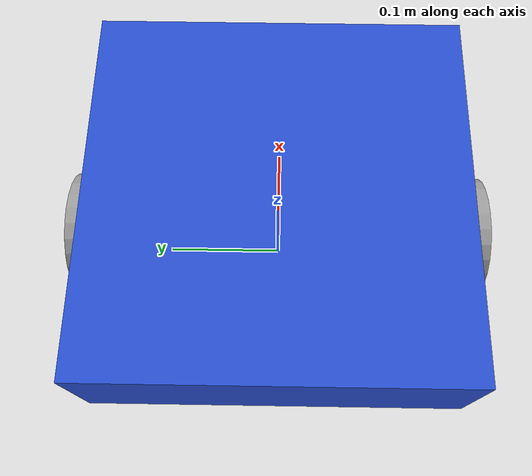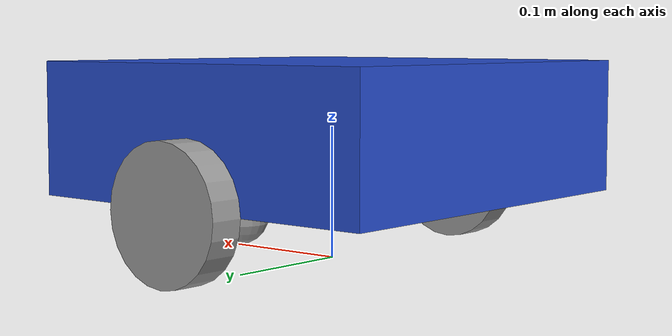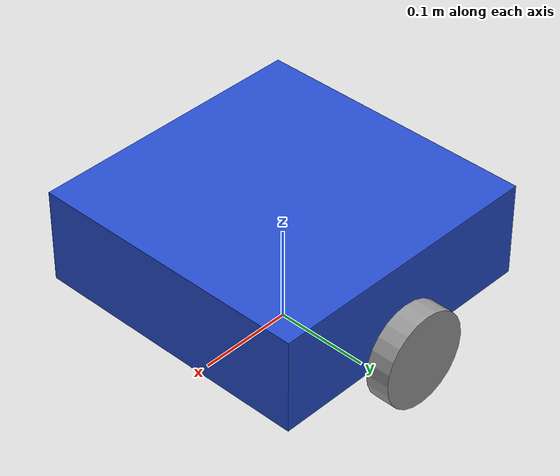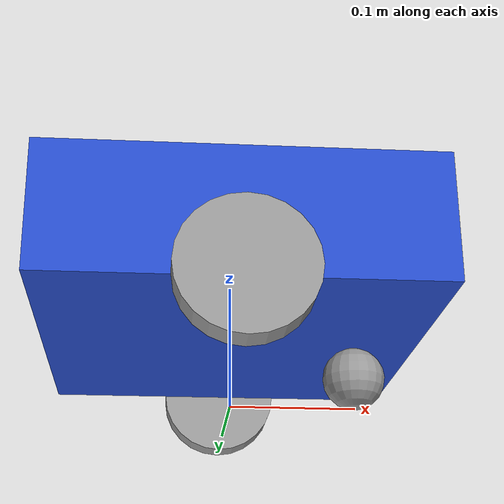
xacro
<?xml version="1.0"?>
<robot xmlns:xacro="http://www.ros.org/wiki/xacro">

    <xacro:property name="base_length" value="0.3" />
    <xacro:property name="base_width" value="0.3" />
    <xacro:property name="base_height" value="0.1" />
    <xacro:property name="wheel_radius" value="0.05" />
    <xacro:property name="wheel_length" value="0.025" />

    <xacro:macro name="wheel_link" params="prefix">
        <link name="${prefix}_wheel_link">
            <visual>
                <geometry>
                    <cylinder radius="${wheel_radius}" length="${wheel_length}" />
                </geometry>
                <origin xyz="0 0 0" rpy="${pi / 2.0} 0 0" />
                <material name="grey"></material>
            </visual>
            <collision>
                <geometry>
                    <cylinder radius="${wheel_radius}" length="${wheel_length}" />
                </geometry>
                <origin xyz="0 0 0" rpy="${pi / 2.0} 0 0" />
            </collision>
            <xacro:cylinder_inertia m="1.0" r="${2*wheel_radius}" h="${2*wheel_length}" xyz="0 0 0" rpy="${pi / 2.0} 0 0" />
        </link>
    </xacro:macro>

    <link name="base_footprint">
    </link>

    <link name="base_link">
        <visual>
            <geometry>
                <box size="${base_length} ${base_width} ${base_height}" />
            </geometry>
            <origin xyz="0 0 ${base_height / 2.0}" rpy="0 0 0"></origin>
            <material name="blue"></material>
        </visual>
        <collision>
            <geometry>
                <box size="${base_length} ${base_width} ${base_height}" />
            </geometry>
            <origin xyz="0 0 ${base_height / 2.0}" rpy="0 0 0"></origin>
        </collision>
        <xacro:box_inertia  m="5.0" l="${2*base_length}" w="${2*base_width}"  h="${2*base_height}"
                            xyz="0 0 ${base_height / 2.0}" rpy="0 0 0" />
    </link>

    <xacro:wheel_link prefix="right" />
    <xacro:wheel_link prefix="left" />

    <link name="caster_wheel_link">
        <visual>
            <geometry>
                <sphere radius="${wheel_radius / 2.0}" />
            </geometry>
            <origin xyz="0 0 0" rpy="0 0 0" />
            <material name="grey"></material>
        </visual>
        <collision>
            <geometry>
                <sphere radius="${wheel_radius / 2.0}" />
            </geometry>
            <origin xyz="0 0 0" rpy="0 0 0" />
        </collision>
        <xacro:sphere_inertia   m="0.5" r="${2*wheel_radius / 2.0}"
                                xyz="0 0 0" rpy="0 0 0" />
    </link>

    <joint name="base_footprint_base_joint" type="fixed">
        <parent link="base_footprint" />
        <child link="base_link" />
        <origin xyz="0 0 ${wheel_radius}" rpy="0 0 0" />
    </joint>

    <joint name="base_right_wheel_joint" type="continuous">
        <parent link="base_link" />
        <child link="right_wheel_link" />
        <origin xyz="${-base_length*0 / 4.0} ${-base_width / 2.0 - wheel_length / 2.0} 0" rpy="0 0 0" />
        <axis xyz="0 1 0" />
    </joint>

    <joint name="base_left_wheel_joint" type="continuous">
        <parent link="base_link" />
        <child link="left_wheel_link" />
        <origin xyz="${-base_length*0 / 4.0} ${base_width / 2.0 + wheel_length / 2.0} 0" rpy="0 0 0" />
        <axis xyz="0 1 0" />
    </joint>

    <joint name="base_caster_wheel_joint" type="fixed">
        <parent link="base_link" />
        <child link="caster_wheel_link" />
        <origin xyz="${base_length / 3.0} 0 ${-wheel_radius / 2.0}" rpy="0 0 0" />
    </joint>

</robot>
